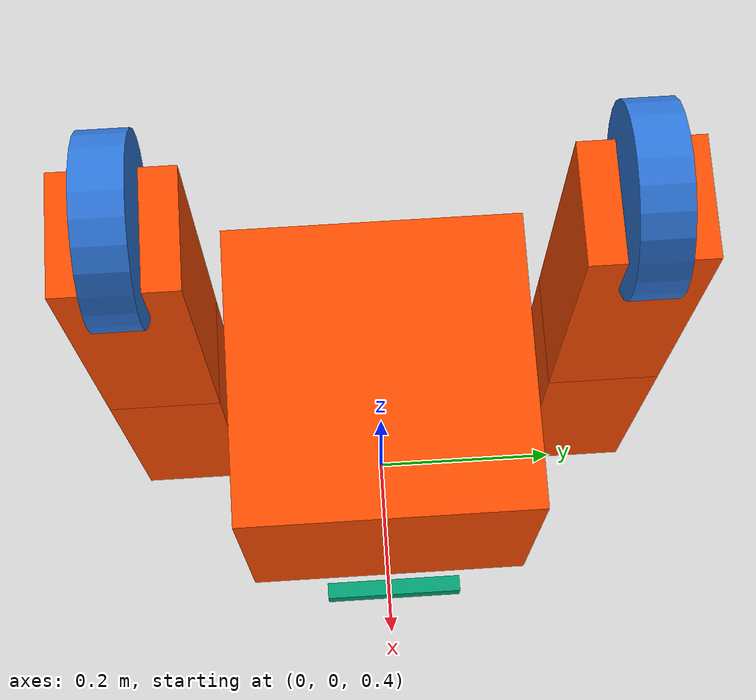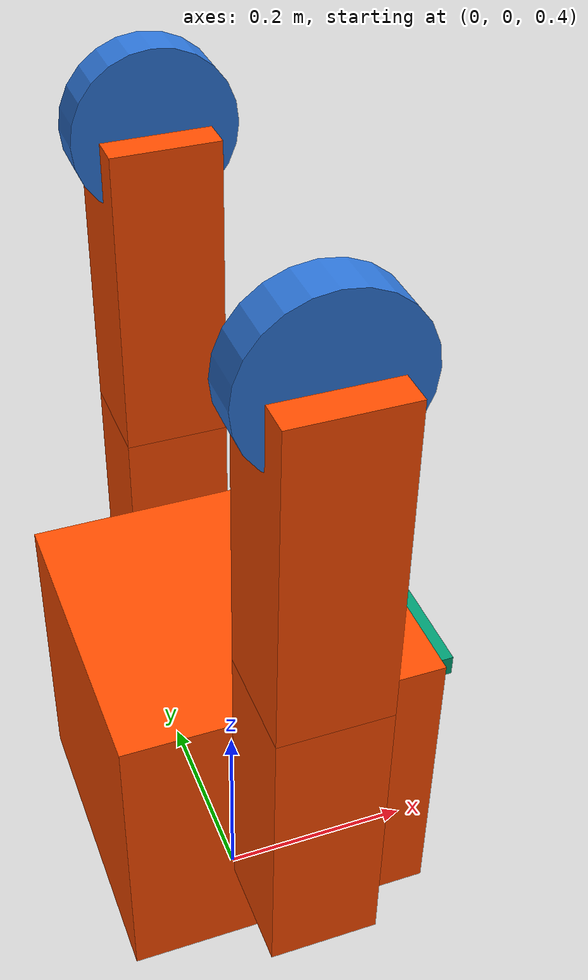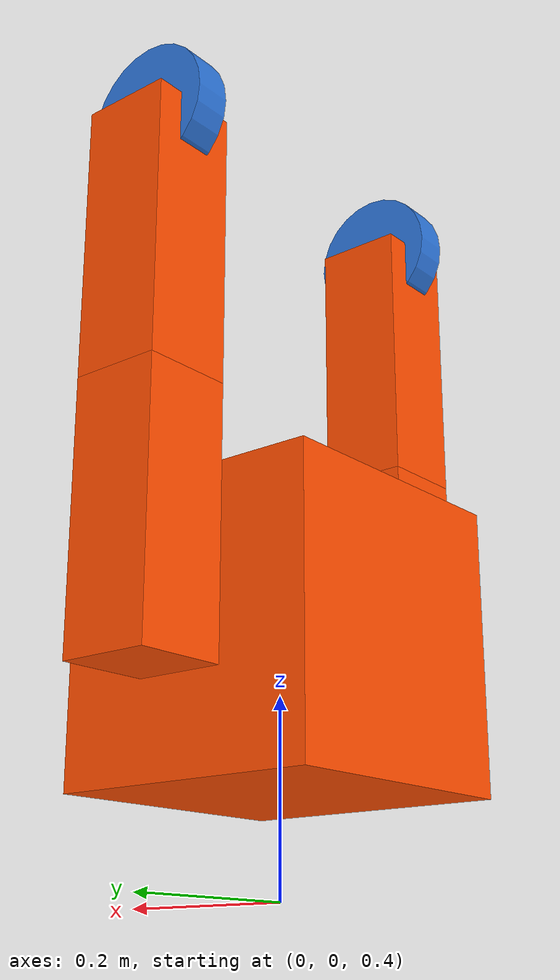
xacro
<?xml version="1.0" ?>
<robot name="ambula_bot" xmlns:xacro="http://ros.org/wiki/xacro">
  <xacro:include filename="$(find ambula_description)/urdf/ambula_bot/properties.urdf.xacro" />
  <xacro:include filename="$(find ambula_description)/urdf/ambula_bot/robot/pillar.urdf.xacro" />
  <xacro:include filename="$(find ambula_description)/urdf/ambula_bot/robot/base.urdf.xacro" />
  <xacro:include filename="$(find ambula_description)/urdf/ambula_bot/robot/hip.urdf.xacro" />
  <xacro:include filename="$(find ambula_description)/urdf/ambula_bot/robot/knee.urdf.xacro" />
  <xacro:include filename="$(find ambula_description)/urdf/ambula_bot/robot/wheel.urdf.xacro" />
  <xacro:include filename="$(find ambula_description)/urdf/ambula_bot/robot/passive_wheel.urdf.xacro" />
  <xacro:include filename="$(find ambula_description)/urdf/ambula_bot/plugin/gazebo_position.urdf.xacro" />

  <!-- Robot -->
  <xacro:base length="${base_length}" width="${base_width}" height="${base_height}" mass="${base_mass}"/>
  <xacro:hip side="left" length="${hip_length}" width="${hip_width}" height="${hip_height}" pos_x="${left_hip_pos_x}" pos_y="${left_hip_pos_y}" pos_z="${left_hip_pos_z}" mass="${hip_mass}"/>
  <xacro:hip side="right" length="${hip_length}" width="${hip_width}" height="${hip_height}" pos_x="${right_hip_pos_x}" pos_y="${right_hip_pos_y}" pos_z="${right_hip_pos_z}" mass="${hip_mass}"/>
  <xacro:knee side="left" length="${knee_length}" width="${knee_width}" height="${knee_height}" pos_x="${left_knee_pos_x}" pos_y="${left_knee_pos_y}" pos_z="${left_knee_pos_z}" mass="${knee_mass}"/>
  <xacro:knee side="right" length="${knee_length}" width="${knee_width}" height="${knee_height}" pos_x="${right_knee_pos_x}" pos_y="${right_knee_pos_y}" pos_z="${right_knee_pos_z}" mass="${knee_mass}"/>
  <xacro:wheel side="left" radius="${wheel_radius}" width="${wheel_width}" pos_x="${left_wheel_pos_x}" pos_y="${left_wheel_pos_y}" pos_z="${left_wheel_pos_z}" mass="${wheel_mass}"/>
  <xacro:wheel side="right" radius="${wheel_radius}" width="${wheel_width}" pos_x="${right_wheel_pos_x}" pos_y="${right_wheel_pos_y}" pos_z="${right_wheel_pos_z}" mass="${wheel_mass}"/>
  <xacro:passive_wheel side="left" radius="${passive_wheel_radius}" width="${passive_wheel_width}" pos_x="${left_passive_wheel_pos_x}" pos_y="${left_passive_wheel_pos_y}" pos_z="${left_passive_wheel_pos_z}" mass="${passive_wheel_mass}"/>
  <xacro:passive_wheel side="right" radius="${passive_wheel_radius}" width="${passive_wheel_width}" pos_x="${right_passive_wheel_pos_x}" pos_y="${right_passive_wheel_pos_y}" pos_z="${right_passive_wheel_pos_z}" mass="${passive_wheel_mass}"/>

  <!-- Sensor -->
  <xacro:include filename="$(find ambula_description)/urdf/ambula_bot/sensor/depth_camera.urdf.xacro" />
  <xacro:include filename="$(find ambula_description)/urdf/ambula_bot/sensor/imu.urdf.xacro" />

</robot>

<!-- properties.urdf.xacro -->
<robot xmlns:xacro="http://www.ros.org/wiki/xacro">

    <!-- Properties -->
    <xacro:property name="pillar_length" value="0.1" />
    <xacro:property name="pillar_width" value="0.1" />
    <xacro:property name="pillar_height" value="0.1" />
    <xacro:property name="pillar_mass" value="0.1" />

    <xacro:property name="base_length" value="0.3" />
    <xacro:property name="base_width" value="0.3" />
    <xacro:property name="base_height" value="0.3" />
    <xacro:property name="base_mass" value="7.0" />

    <xacro:property name="hip_length" value="0.1" />
    <xacro:property name="hip_width" value="0.1" />
    <xacro:property name="hip_height" value="0.28" />
    <xacro:property name="hip_mass" value="1.0" />
    <xacro:property name="left_hip_pos_x" value="0.0" />
    <xacro:property name="left_hip_pos_y" value="0.2" />
    <xacro:property name="left_hip_pos_z" value="0.1" />
    <xacro:property name="right_hip_pos_x" value="0.0" />
    <xacro:property name="right_hip_pos_y" value="-0.2" />
    <xacro:property name="right_hip_pos_z" value="0.1" />

    <xacro:property name="knee_length" value="0.1" />
    <xacro:property name="knee_width" value="0.1" />
    <xacro:property name="knee_height" value="0.30" />
    <xacro:property name="knee_mass" value="1.0" />
    <xacro:property name="left_knee_pos_x" value="0.0" />
    <xacro:property name="left_knee_pos_y" value="0.0" />
    <xacro:property name="left_knee_pos_z" value="0.28" />
    <xacro:property name="right_knee_pos_x" value="0.0" />
    <xacro:property name="right_knee_pos_y" value="0.0" />
    <xacro:property name="right_knee_pos_z" value="0.28" />

    <xacro:property name="wheel_radius" value="0.075" />
    <xacro:property name="wheel_width" value="0.04" />
    <xacro:property name="wheel_mass" value="2.0" />
    <xacro:property name="left_wheel_pos_x" value="0.0" />
    <xacro:property name="left_wheel_pos_y" value="0.0" />
    <xacro:property name="left_wheel_pos_z" value="0.3" />
    <xacro:property name="right_wheel_pos_x" value="0.0" />
    <xacro:property name="right_wheel_pos_y" value="0.0" />
    <xacro:property name="right_wheel_pos_z" value="0.3" />

    <xacro:property name="passive_wheel_radius" value="0.03" />
    <xacro:property name="passive_wheel_width" value="0.01" />
    <xacro:property name="passive_wheel_mass" value="0.1" />
    <xacro:property name="left_passive_wheel_pos_x" value="0.0" />
    <xacro:property name="left_passive_wheel_pos_y" value="0.0" />
    <xacro:property name="left_passive_wheel_pos_z" value="0.34" />
    <xacro:property name="right_passive_wheel_pos_x" value="0.0" />
    <xacro:property name="right_passive_wheel_pos_y" value="0.0" />
    <xacro:property name="right_passive_wheel_pos_z" value="0.34" />

</robot>

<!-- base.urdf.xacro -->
<robot xmlns:xacro="http://www.ros.org/wiki/xacro">
    <xacro:macro name="base" params="length width height mass">
        <link name="base_footprint"/>

        <link name="base_link">
            <visual>
                <origin xyz="0 0 ${height/2}" rpy="0 0 0"/>
                <geometry>
                    <box size="${length} ${width} ${height}"/>
                </geometry>
                <material name="orange">
                    <color rgba="1.0 0.3 0.0 1.0"/>
                </material>
            </visual>

            <collision>
                <origin xyz="0 0 ${height/2}" rpy="0 0 0"/>
                <geometry>
                    <box size="${length} ${width} ${height}"/>
                </geometry>
            </collision>

            <inertial>
                <origin xyz="0 0 ${height/2}" rpy="0 0 0"/>
                <mass value="${mass}"/>
                <inertia ixx="${(1/12) * mass * ((width  * width)  + (height * height))}" ixy="0.0" ixz="0.0" iyy="${(1/12) * mass * ((length * length) + (height * height))}" iyz="0.0" izz="${(1/12) * mass * ((length * length) + (width  * width))}"/>
            </inertial>
        </link>

        <gazebo reference="base_link">
            <visual>
                <material>
                    <ambient>0.8392 0.6314 0.0 1.0</ambient>
                    <diffuse>0.8392 0.6314 0.0 1.0</diffuse>
                    <specular>0.99 0.99 0.99 1.0</specular>
                    <emissive>0.0 0.0 0.0 0.0</emissive>
                </material>
            </visual>
        </gazebo>

        <joint name="base_to_footprint" type="fixed">
            <parent link="base_footprint" />
            <child link="base_link" />
            <origin rpy="0 0 0" xyz="0 0 0.5" />
        </joint>

    </xacro:macro>

</robot>

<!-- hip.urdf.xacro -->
<robot xmlns:xacro="http://www.ros.org/wiki/xacro">
    <xacro:macro name="hip" params="side length width height pos_x pos_y pos_z mass">
        <link name="${side}_hip_link">
            <visual>
                <origin xyz="0 0 ${height/2}" rpy="0 0 0"/>
                <geometry>
                    <box size="${length} ${width} ${height}"/>
                </geometry>
                <material name="orange">
                    <color rgba="1.0 0.3 0.0 1.0"/>
                </material>
            </visual>

            <collision>
                <origin xyz="0 0 ${height/2}" rpy="0 0 0"/>
                <geometry>
                    <box size="${length} ${width} ${height}"/>
                </geometry>
            </collision>

            <inertial>
                <origin xyz="0 0 ${height/2}" rpy="0 0 0"/>
                <mass value="${mass}"/>
                <inertia ixx="${(1/12) * mass * ((width  * width)  + (height * height))}" ixy="0.0" ixz="0.0" iyy="${(1/12) * mass * ((length * length) + (height * height))}" iyz="0.0" izz="${(1/12) * mass * ((length * length) + (width  * width))}"/>
            </inertial>
        </link>

        <gazebo reference="base_link">
            <visual>
                <material>
                    <ambient>0.8392 0.6314 0.0 1.0</ambient>
                    <diffuse>0.8392 0.6314 0.0 1.0</diffuse>
                    <specular>0.99 0.99 0.99 1.0</specular>
                    <emissive>0.0 0.0 0.0 0.0</emissive>
                </material>
            </visual>
        </gazebo>

        <joint name="${side}_hip_joint" type="revolute">
            <axis xyz="0 1 0" />
            <origin xyz="${pos_x} ${pos_y} ${pos_z}" />
            <parent link="base_link" />
            <child link="${side}_hip_link" />
            <limit effort="1000" lower="${-pi}" upper="0.0" velocity="10" />
            <dynamics damping="5.0" friction="3.0"/>
        </joint>

    </xacro:macro>

</robot>

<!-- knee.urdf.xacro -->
<robot xmlns:xacro="http://www.ros.org/wiki/xacro">
    <xacro:macro name="knee" params="side length width height pos_x pos_y pos_z mass">
        <link name="${side}_knee_link">
            <visual>
                <origin xyz="0 0 ${height/2}" rpy="0 0 0"/>
                <geometry>
                    <box size="${length} ${width} ${height}"/>
                </geometry>
                <material name="orange">
                    <color rgba="1.0 0.3 0.0 1.0"/>
                </material>
            </visual>

            <collision>
                <origin xyz="0 0 ${height/2}" rpy="0 0 0"/>
                <geometry>
                    <box size="${length} ${width} ${height}"/>
                </geometry>
            </collision>

            <inertial>
                <origin xyz="0 0 ${height/2}" rpy="0 0 0"/>
                <mass value="${mass}"/>
                <inertia ixx="${(1/12) * mass * ((width  * width)  + (height * height))}" ixy="0.0" ixz="0.0" iyy="${(1/12) * mass * ((length * length) + (height * height))}" iyz="0.0" izz="${(1/12) * mass * ((length * length) + (width  * width))}"/>
            </inertial>
        </link>

        <gazebo reference="base_link">
            <visual>
                <material>
                    <ambient>0.8392 0.6314 0.0 1.0</ambient>
                    <diffuse>0.8392 0.6314 0.0 1.0</diffuse>
                    <specular>0.99 0.99 0.99 1.0</specular>
                    <emissive>0.0 0.0 0.0 0.0</emissive>
                </material>
            </visual>
        </gazebo>

        <joint name="${side}_knee_joint" type="revolute">
            <axis xyz="0 1 0" />
            <origin xyz="${pos_x} ${pos_y} ${pos_z}" />
            <parent link="${side}_hip_link" />
            <child link="${side}_knee_link" />
            <limit effort="1000" lower="${-pi}" upper="0.0" velocity="10" />
            <dynamics damping="5.0" friction="3.0"/>
        </joint>

    </xacro:macro>

</robot>

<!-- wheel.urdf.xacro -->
<robot xmlns:xacro="http://ros.org/wiki/xacro">
    <xacro:macro name="wheel" params="side radius width pos_x pos_y pos_z mass">
        <link name="${side}_wheel_link">
        <visual>
            <origin xyz="0 0 0" rpy="${pi/2} 0 0"/>
            <geometry>
            <cylinder radius="${radius}" length="${width}"/>
            </geometry>
            <material name="blue">
                <color rgba="0.1764 0.4588 0.8509 1.0"/>
            </material>
        </visual>
        <collision>
            <origin xyz="0 0 0" rpy="${pi/2} 0 0"/>
            <geometry>
            <cylinder radius="${radius}" length="${width}"/>
            </geometry>
        </collision>

        <inertial>
            <origin xyz="0 0 0" rpy="0 0 0"/>
            <mass value="${mass}"/>
            <inertia ixx="${(2/5) * mass * (radius * radius)}" ixy="0" ixz="0"
                    iyy="${(2/5) * mass * (radius * radius)}" iyz="0"
                    izz="${(2/5) * mass * (radius * radius)}" />
        </inertial>
        </link>

        <gazebo reference="${side}_wheel_link">
            <mu1>0.01</mu1>
            <mu2>0.01</mu2>
        </gazebo>

        <gazebo reference="${side}_wheel_link">
            <visual>
                <material>
                <ambient>0.1764 0.4588 0.8509 1.0</ambient>
                <diffuse>0.1764 0.4588 0.8509 1.0</diffuse>
                <specular>0.1764 0.4588 0.8509 1.0</specular>
                <emissive>0.0 0.0 0.0 0.0</emissive>
                </material>
            </visual>
        </gazebo>
        <joint name="${side}_wheel_joint" type="continuous">
            <axis xyz="0 1 0" />
            <parent link="${side}_knee_link"/>
            <child link="${side}_wheel_link"/>
            <origin xyz="${pos_x} ${pos_y} ${pos_z}" rpy="0 0 0"/>
            <dynamics damping="0.01" friction="0.0"/>
        </joint>
    </xacro:macro>
</robot>

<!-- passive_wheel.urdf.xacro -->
<robot xmlns:xacro="http://ros.org/wiki/xacro">
    <xacro:macro name="passive_wheel" params="side radius width pos_x pos_y pos_z mass">
        <link name="${side}_passive_wheel_link">
        <visual>
            <origin xyz="0 0 0" rpy="${pi/2} 0 0"/>
            <geometry>
            <cylinder radius="${radius}" length="${width}"/>
            </geometry>
            <material name="blue">
                <color rgba="0.1764 0.4588 0.8509 1.0"/>
            </material>
        </visual>
        <collision>
            <origin xyz="0 0 0" rpy="${pi/2} 0 0"/>
            <geometry>
            <cylinder radius="${radius}" length="${width}"/>
            </geometry>
        </collision>

        <inertial>
            <origin xyz="0 0 0" rpy="0 0 0"/>
            <mass value="${mass}"/>
            <inertia ixx="${(2/5) * mass * (radius * radius)}" ixy="0" ixz="0"
                    iyy="${(2/5) * mass * (radius * radius)}" iyz="0"
                    izz="${(2/5) * mass * (radius * radius)}" />
        </inertial>
        </link>

        <gazebo reference="${side}_passive_wheel_link">
            <mu1>0.01</mu1>
            <mu2>0.01</mu2>
        </gazebo>

        <gazebo reference="${side}_passive_wheel_link">
            <visual>
                <material>
                <ambient>0.1764 0.4588 0.8509 1.0</ambient>
                <diffuse>0.1764 0.4588 0.8509 1.0</diffuse>
                <specular>0.1764 0.4588 0.8509 1.0</specular>
                <emissive>0.0 0.0 0.0 0.0</emissive>
                </material>
            </visual>
        </gazebo>
        <joint name="${side}_passive_wheel_joint" type="fixed">
            <axis xyz="0 0 0" />
            <parent link="${side}_hip_link"/>
            <child link="${side}_passive_wheel_link"/>
            <origin xyz="${pos_x} ${pos_y} ${pos_z}" rpy="0 0 0"/>
        </joint>
    </xacro:macro>
</robot>

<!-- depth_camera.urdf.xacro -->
<robot xmlns:xacro="http://www.ros.org/wiki/xacro">

    <link name="camera_link">
        <visual>
            <origin xyz="0 0 0" rpy="0 0 0"/>
            <geometry>
                <box size="0.015 0.130 0.022"/>
            </geometry>
        </visual>

        <collision>
            <origin xyz="0 0 0" rpy="0 0 0"/>
            <geometry>
                <box size="0.015 0.130 0.022"/>
            </geometry>
        </collision>

        <inertial>
            <origin xyz="0 0 0" rpy="0 0 0"/>
            <mass value="0.035"/>
            <inertia ixx="0.001" ixy="0" ixz="0" iyy="0.001" iyz="0" izz="0.001" />
        </inertial>
    </link>

    <joint name="camera_to_base_link" type="fixed">
        <parent link="base_link" />
        <child link="camera_link" />
        <origin xyz="0.2 0 0.2" rpy="0 0 0"/>
    </joint>

    <gazebo reference="camera_link">
        <sensor name="depth_camera" type="rgbd_camera">
            <always_on>true</always_on>
            <visualize>true</visualize>
            <update_rate>15</update_rate>
            <topic>depth_camera</topic>
            <gz_frame_id>camera_link</gz_frame_id>
            <camera>
                <horizontal_fov>1.047198</horizontal_fov>
                <image>
                    <width>640</width>
                    <height>480</height>
                </image>
                <clip>
                    <near>0.05</near>
                    <far>3.0</far>
                </clip>
                <distortion>                 <!-- Brown–Conrady -->
                    <k1>0.0</k1>
                    <k2>0.0</k2>
                    <k3>0.0</k3>
                    <p1>0.0</p1>
                    <p2>0.0</p2>
                    <center>0.5 0.5</center>  <!-- principal point (normalized) -->
                </distortion>
            </camera>
        </sensor>
    </gazebo>

</robot>

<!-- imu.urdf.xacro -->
<robot xmlns:xacro="http://www.ros.org/wiki/xacro">

    <link name="imu_link">
        <visual>
            <origin xyz="0 0 0" rpy="0 0 0"/>
            <geometry>
                <box size="0.01 0.01 0.01"/>
            </geometry>
        </visual>

        <collision>
            <origin xyz="0 0 0" rpy="0 0 0"/>
            <geometry>
                <box size="0.01 0.01 0.01"/>
            </geometry>
        </collision>

        <inertial>
            <origin xyz="0 0 0" rpy="0 0 0"/>
            <mass value="0.035"/>
            <inertia ixx="0.001" ixy="0" ixz="0" iyy="0.001" iyz="0" izz="0.001" />
        </inertial>
    </link>

    <joint name="imu_to_camera" type="fixed">
        <parent link="camera_link"/>
        <child link="imu_link"/>
        <origin xyz="0 0 0" rpy="0 0 0"/>
    </joint>

    <gazebo reference="imu_link">
        <sensor name="imu_sensor" type="imu">
            <pose relative_to="base_link">0 0 0 0 0 0</pose>
            <always_on>1</always_on>
            <update_rate>1000.0</update_rate>
            <topic>imu</topic>
            <gz_frame_id>imu_link</gz_frame_id>
        </sensor>
            <sensor name="navsat" type="navsat">
            <always_on>1</always_on>
            <update_rate>1</update_rate>
            <topic>navsat</topic>
            <gz_frame_id>imu_link</gz_frame_id>
        </sensor>
    </gazebo>

</robot>
